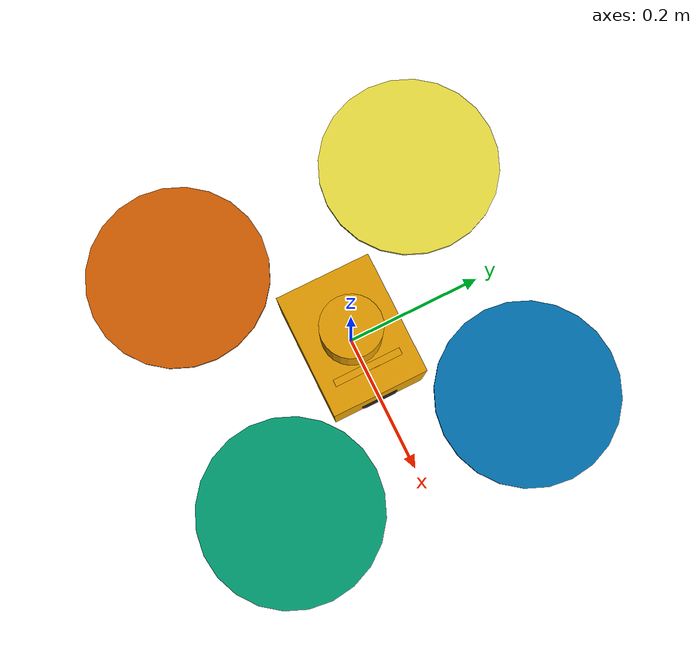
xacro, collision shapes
<?xml version='1.0' encoding='utf-8'?>
<robot name='ctu_cras_norlab_x500_sensor_config_1' xmlns:xacro='http://ros.org/wiki/xacro'>
  <xacro:arg name="name" default="ctu_cras_norlab_x500_sensor_config_1"/>
  <xacro:property name="robot_namespace" value="$(arg name)"/>
  <link name='${robot_namespace}/base_link'>
    <inertial>
      <origin xyz='0 0 0' rpy='0 -0 0'/>
      <mass value='3.3'/>
      <inertia ixx='0.0316667' ixy='0' ixz='0' iyy='0.0316667' iyz='0' izz='0.0625'/>
    </inertial>
    <collision name='base_link_inertia_collision'>
      <origin xyz='0 0 0' rpy='0 -0 0'/>
      <geometry>
        <box size='0.18 0.14 0.12'/>
      </geometry>
    </collision>
    <collision name='base_link_fixed_joint_lump__bottom_light_link_collision_1'>
      <origin xyz='0.03 0 -0.05' rpy='0 -0 0'/>
      <geometry>
        <box size='0.01 0.1 0.003'/>
      </geometry>
    </collision>
    <collision name='base_link_fixed_joint_lump__top_light_link_collision_2'>
      <origin xyz='0.05 0 0.059' rpy='0 -0 0'/>
      <geometry>
        <box size='0.01 0.1 0.003'/>
      </geometry>
    </collision>
    <collision name='base_link_fixed_joint_lump__front_left_leg_clip_link_collision_3'>
      <origin xyz='0.162635 0.162635 -0.0785' rpy='0 -0 0'/>
      <geometry>
        <cylinder radius='0.012' length='0.157'/>
      </geometry>
    </collision>
    <collision name='base_link_fixed_joint_lump__front_left_leg_light_link_collision_4'>
      <origin xyz='0.159099 0.152028 -0.0785' rpy='0 -0 2.35619'/>
      <geometry>
        <box size='0.003 0.01 0.145'/>
      </geometry>
    </collision>
    <collision name='base_link_fixed_joint_lump__front_right_leg_clip_link_collision_5'>
      <origin xyz='0.162635 -0.162635 -0.0785' rpy='0 0 -1.5708'/>
      <geometry>
        <cylinder radius='0.012' length='0.157'/>
      </geometry>
    </collision>
    <collision name='base_link_fixed_joint_lump__front_right_leg_light_link_collision_6'>
      <origin xyz='0.159099 -0.152028 -0.0785' rpy='0 -0 0.785398'/>
      <geometry>
        <box size='0.003 0.01 0.145'/>
      </geometry>
    </collision>
    <collision name='base_link_fixed_joint_lump__os_sensor_link_collision_7'>
      <origin xyz='0 0 0.0944' rpy='0 -0 1.5708'/>
      <geometry>
        <cylinder radius='0.0425' length='0.0735'/>
      </geometry>
    </collision>
    <collision name='base_link_fixed_joint_lump__rear_left_leg_clip_link_collision_8'>
      <origin xyz='-0.162635 0.162635 -0.0785' rpy='0 -0 1.5708'/>
      <geometry>
        <cylinder radius='0.012' length='0.157'/>
      </geometry>
    </collision>
    <collision name='base_link_fixed_joint_lump__rear_right_leg_clip_link_collision_9'>
      <origin xyz='-0.162635 -0.162635 -0.0785' rpy='0 0 -3.14159'/>
      <geometry>
        <cylinder radius='0.012' length='0.157'/>
      </geometry>
    </collision>
    <collision name='base_link_fixed_joint_lump__rs_up_holder_link_collision_10'>
      <origin xyz='0.085 0 0.032' rpy='-1.5708 -0 -1.5708'/>
      <geometry>
        <mesh filename='package://ctu_cras_norlab_x500_sensor_config_1/meshes/holder_rs_up.dae' scale='1 1 1'/>
      </geometry>
    </collision>
    <collision name='base_link_fixed_joint_lump__sensor_holder_link_collision_11'>
      <origin xyz='0 0 -0.022' rpy='1.5708 0 -1.5708'/>
      <geometry>
        <mesh filename='package://ctu_cras_norlab_x500_sensor_config_1/meshes/holder_rs_down_bfox.dae' scale='1 1 1'/>
      </geometry>
    </collision>
    <visual name='base_link_fixed_joint_lump__rs_up_visual_visual'>
      <origin xyz='0.082 0 0.034' rpy='-1.5708 0 1.5708'/>
      <geometry>
        <mesh filename='package://ctu_cras_norlab_x500_sensor_config_1/meshes/realsense.dae' scale='1 1 1'/>
      </geometry>
    </visual>
    <visual name='base_link_fixed_joint_lump__rs_down_visual_visual_1'>
      <origin xyz='0.085 0 -0.02' rpy='1.5708 -0 1.5708'/>
      <geometry>
        <mesh filename='package://ctu_cras_norlab_x500_sensor_config_1/meshes/realsense.dae' scale='1 1 1'/>
      </geometry>
    </visual>
    <visual name='base_link_fixed_joint_lump__camera_front_visual_2'>
      <origin xyz='0.107 0 0' rpy='0 -0 0'/>
      <geometry>
        <mesh filename='package://ctu_cras_norlab_x500_sensor_config_1/meshes/bluefox.dae' scale='1 1 1'/>
      </geometry>
    </visual>
    <visual name='base_link_fixed_joint_lump__back_cover_link_visual_3'>
      <origin xyz='-0.064 0 0.03' rpy='0 -0 1.5708'/>
      <geometry>
        <mesh filename='package://ctu_cras_norlab_x500_sensor_config_1/meshes/side_mrs.dae' scale='1 1 1'/>
      </geometry>
    </visual>
    <visual name='base_link_fixed_joint_lump__back_left_arm_link_visual_4'>
      <origin xyz='0 0 0' rpy='0 -0 2.35619'/>
      <geometry>
        <mesh filename='package://ctu_cras_norlab_x500_sensor_config_1/meshes/holybro_x500_arm.dae' scale='1 1 1'/>
      </geometry>
    </visual>
    <visual name='base_link_fixed_joint_lump__back_left_rotor_link_visual_5'>
      <origin xyz='-0.177484 0.177484 0.021' rpy='0 -0 0'/>
      <geometry>
        <mesh filename='package://ctu_cras_norlab_x500_sensor_config_1/meshes/holybro_x500_motor.dae' scale='1 1 1'/>
      </geometry>
    </visual>
    <visual name='base_link_fixed_joint_lump__back_right_arm_link_visual_6'>
      <origin xyz='0 0 0' rpy='0 0 -2.35619'/>
      <geometry>
        <mesh filename='package://ctu_cras_norlab_x500_sensor_config_1/meshes/holybro_x500_arm.dae' scale='1 1 1'/>
      </geometry>
    </visual>
    <visual name='base_link_fixed_joint_lump__back_right_rotor_link_visual_7'>
      <origin xyz='-0.177484 -0.177484 0.021' rpy='0 -0 0'/>
      <geometry>
        <mesh filename='package://ctu_cras_norlab_x500_sensor_config_1/meshes/holybro_x500_motor.dae' scale='1 1 1'/>
      </geometry>
    </visual>
    <visual name='base_link_fixed_joint_lump__battery_mount_left_link_visual_8'>
      <origin xyz='-0.02 0.03 0' rpy='0 -0 0'/>
      <geometry>
        <mesh filename='package://ctu_cras_norlab_x500_sensor_config_1/meshes/holybro_x500_battery.dae' scale='1 1 1'/>
      </geometry>
    </visual>
    <visual name='base_link_fixed_joint_lump__battery_mount_right_link_visual_9'>
      <origin xyz='-0.02 -0.03 0' rpy='0 -0 0'/>
      <geometry>
        <mesh filename='package://ctu_cras_norlab_x500_sensor_config_1/meshes/holybro_x500_battery.dae' scale='1 1 1'/>
      </geometry>
    </visual>
    <visual name='base_link_fixed_joint_lump__bottom_board_link_visual_10'>
      <origin xyz='0 0 0' rpy='0 -0 0'/>
      <geometry>
        <mesh filename='package://ctu_cras_norlab_x500_sensor_config_1/meshes/holybro_x500_bottom_board.dae' scale='1 1 1'/>
      </geometry>
    </visual>
    <visual name='base_link_fixed_joint_lump__bottom_light_link_visual_11'>
      <origin xyz='0.03 0 -0.05' rpy='0 -0 0'/>
      <geometry>
        <box size='0.01 0.1 0.003'/>
      </geometry>
    </visual>
    <visual name='base_link_fixed_joint_lump__computer_board_link_visual_12'>
      <origin xyz='0 0 0.058' rpy='0 -0 0'/>
      <geometry>
        <box size='0.125 0.125 0.002'/>
      </geometry>
    </visual>
    <visual name='base_link_fixed_joint_lump__top_light_link_visual_13'>
      <origin xyz='0.05 0 0.059' rpy='0 -0 0'/>
      <geometry>
        <box size='0.01 0.1 0.003'/>
      </geometry>
    </visual>
    <visual name='base_link_fixed_joint_lump__front_left_arm_link_visual_14'>
      <origin xyz='0 0 0' rpy='0 -0 0.785398'/>
      <geometry>
        <mesh filename='package://ctu_cras_norlab_x500_sensor_config_1/meshes/holybro_x500_arm.dae' scale='1 1 1'/>
      </geometry>
    </visual>
    <visual name='base_link_fixed_joint_lump__front_left_leg_clip_link_visual_15'>
      <origin xyz='0.162635 0.162635 -0.157' rpy='0 -0 0.785398'/>
      <geometry>
        <mesh filename='package://ctu_cras_norlab_x500_sensor_config_1/meshes/holybro_x500_leg.dae' scale='1 1 1'/>
      </geometry>
    </visual>
    <visual name='base_link_fixed_joint_lump__front_left_leg_light_link_visual_16'>
      <origin xyz='0.159099 0.152028 -0.0785' rpy='0 -0 2.35619'/>
      <geometry>
        <box size='0.003 0.01 0.145'/>
      </geometry>
    </visual>
    <visual name='base_link_fixed_joint_lump__front_left_rotor_link_visual_17'>
      <origin xyz='0.177484 0.177484 0.021' rpy='0 -0 0'/>
      <geometry>
        <mesh filename='package://ctu_cras_norlab_x500_sensor_config_1/meshes/holybro_x500_motor.dae' scale='1 1 1'/>
      </geometry>
    </visual>
    <visual name='base_link_fixed_joint_lump__front_right_arm_link_visual_18'>
      <origin xyz='0 0 0' rpy='0 0 -0.785398'/>
      <geometry>
        <mesh filename='package://ctu_cras_norlab_x500_sensor_config_1/meshes/holybro_x500_arm.dae' scale='1 1 1'/>
      </geometry>
    </visual>
    <visual name='base_link_fixed_joint_lump__front_right_leg_clip_link_visual_19'>
      <origin xyz='0.162635 -0.162635 -0.157' rpy='0 0 -0.785398'/>
      <geometry>
        <mesh filename='package://ctu_cras_norlab_x500_sensor_config_1/meshes/holybro_x500_leg.dae' scale='1 1 1'/>
      </geometry>
    </visual>
    <visual name='base_link_fixed_joint_lump__front_right_leg_light_link_visual_20'>
      <origin xyz='0.159099 -0.152028 -0.0785' rpy='0 -0 0.785398'/>
      <geometry>
        <box size='0.003 0.01 0.145'/>
      </geometry>
    </visual>
    <visual name='base_link_fixed_joint_lump__front_right_rotor_link_visual_21'>
      <origin xyz='0.177484 -0.177484 0.021' rpy='0 -0 0'/>
      <geometry>
        <mesh filename='package://ctu_cras_norlab_x500_sensor_config_1/meshes/holybro_x500_motor.dae' scale='1 1 1'/>
      </geometry>
    </visual>
    <visual name='base_link_fixed_joint_lump__left_cover_link_visual_22'>
      <origin xyz='0 0.064 0.03' rpy='0 0 -3.14159'/>
      <geometry>
        <mesh filename='package://ctu_cras_norlab_x500_sensor_config_1/meshes/side_ctu.dae' scale='1 1 1'/>
      </geometry>
    </visual>
    <visual name='base_link_fixed_joint_lump__os_sensor_link_visual_23'>
      <origin xyz='0 0 0.06' rpy='0 -0 1.5708'/>
      <geometry>
        <mesh filename='package://ctu_cras_norlab_x500_sensor_config_1/meshes/os1_64.dae' scale='1 1 1'/>
      </geometry>
    </visual>
    <visual name='base_link_fixed_joint_lump__os_sensor_window_link_visual_24'>
      <origin xyz='0 0 0.0944' rpy='0 -0 0'/>
      <geometry>
        <cylinder radius='0.038' length='0.035'/>
      </geometry>
    </visual>
    <visual name='base_link_fixed_joint_lump__pc_mount_link_visual_25'>
      <origin xyz='0 0 0' rpy='0 -0 0'/>
      <geometry>
        <mesh filename='package://ctu_cras_norlab_x500_sensor_config_1/meshes/holybro_x500_pc_mount.dae' scale='1 1 1'/>
      </geometry>
    </visual>
    <visual name='base_link_fixed_joint_lump__pixhawk_link_visual_26'>
      <origin xyz='0 0 0.036' rpy='0 -0 0'/>
      <geometry>
        <mesh filename='package://ctu_cras_norlab_x500_sensor_config_1/meshes/pixhawk.dae' scale='1 1 1'/>
      </geometry>
    </visual>
    <visual name='base_link_fixed_joint_lump__rear_left_leg_clip_link_visual_27'>
      <origin xyz='-0.162635 0.162635 -0.157' rpy='0 -0 2.35619'/>
      <geometry>
        <mesh filename='package://ctu_cras_norlab_x500_sensor_config_1/meshes/holybro_x500_leg.dae' scale='1 1 1'/>
      </geometry>
    </visual>
    <visual name='base_link_fixed_joint_lump__rear_right_leg_clip_link_visual_28'>
      <origin xyz='-0.162635 -0.162635 -0.157' rpy='0 0 -2.35619'/>
      <geometry>
        <mesh filename='package://ctu_cras_norlab_x500_sensor_config_1/meshes/holybro_x500_leg.dae' scale='1 1 1'/>
      </geometry>
    </visual>
    <visual name='base_link_fixed_joint_lump__right_cover_link_visual_29'>
      <origin xyz='0 -0.064 0.03' rpy='0 -0 0'/>
      <geometry>
        <mesh filename='package://ctu_cras_norlab_x500_sensor_config_1/meshes/side_ctu.dae' scale='1 1 1'/>
      </geometry>
    </visual>
    <visual name='base_link_fixed_joint_lump__rs_up_holder_link_visual_30'>
      <origin xyz='0.085 0 0.032' rpy='-1.5708 -0 -1.5708'/>
      <geometry>
        <mesh filename='package://ctu_cras_norlab_x500_sensor_config_1/meshes/holder_rs_up.dae' scale='1 1 1'/>
      </geometry>
    </visual>
    <visual name='base_link_fixed_joint_lump__sensor_holder_link_visual_31'>
      <origin xyz='0 0 -0.022' rpy='1.5708 0 -1.5708'/>
      <geometry>
        <mesh filename='package://ctu_cras_norlab_x500_sensor_config_1/meshes/holder_rs_down_bfox.dae' scale='1 1 1'/>
      </geometry>
    </visual>
  </link>
  <sensor name='front_laser' update_rate='20'>
    <parent link='${robot_namespace}/base_link'/>
    <origin xyz='0 0 0.0944' rpy='0 -0 0'/>
  </sensor>
  <sensor name='rs_up' update_rate='30'>
    <parent link='${robot_namespace}/base_link'/>
    <origin xyz='0.82 0 0.034' rpy='0 -1.5708 0'/>
    <camera>
      <image width='1280' height='720' format='R8G8B8' hfov='1.50098' near='0.01' far='300' />
    </camera>
  </sensor>
  <sensor name='rs_down' update_rate='20'>
    <parent link='${robot_namespace}/base_link'/>
    <origin xyz='0.85 0 -0.2' rpy='0 1.5708 0'/>
    <camera>
      <image width='1280' height='720' format='R8G8B8' hfov='1.50098' near='0.01' far='300' />
    </camera>
  </sensor>
  <sensor name='camera_front' update_rate='60'>
    <parent link='${robot_namespace}/base_link'/>
    <origin xyz='0.107 0 0' rpy='0 -0 0'/>
    <camera>
      <image width='1600' height='1200' format='R8G8B8' hfov='1.74533' near='0.01' far='300' />
    </camera>
  </sensor>
  <sensor name='imu_sensor' update_rate='250'>
    <parent link='${robot_namespace}/base_link'/>
    <origin xyz='0 0 0' rpy='0 -0 0'/>
  </sensor>
  <link name='${robot_namespace}/imu_link'>
    <inertial>
      <origin xyz='0 0 0' rpy='0 -0 0'/>
      <mass value='0.015'/>
      <inertia ixx='1e-05' ixy='0' ixz='0' iyy='1e-05' iyz='0' izz='1e-05'/>
    </inertial>
  </link>
  <link name='${robot_namespace}/rotor_0'>
    <inertial>
      <origin xyz='0 0 0' rpy='0 -0 0'/>
      <mass value='0.005'/>
      <inertia ixx='0.0001' ixy='0' ixz='0' iyy='0.0001' iyz='0' izz='0.0001'/>
    </inertial>
    <collision name='rotor_0_collision'>
      <origin xyz='0 0 0' rpy='0 -0 0'/>
      <geometry>
        <cylinder radius='0.127' length='0.005'/>
      </geometry>
    </collision>
    <visual name='rotor_0_visual'>
      <origin xyz='0 0 0' rpy='0 -0 0'/>
      <geometry>
        <mesh filename='package://ctu_cras_norlab_x500_sensor_config_1/meshes/holybro_x500_prop.dae' scale='1 1 1'/>
      </geometry>
    </visual>
  </link>
  <link name='${robot_namespace}/rotor_1'>
    <inertial>
      <origin xyz='0 0 0' rpy='0 -0 0'/>
      <mass value='0.005'/>
      <inertia ixx='0.0001' ixy='0' ixz='0' iyy='0.0001' iyz='0' izz='0.0001'/>
    </inertial>
    <collision name='rotor_1_collision'>
      <origin xyz='0 0 0' rpy='0 -0 0'/>
      <geometry>
        <cylinder radius='0.127' length='0.005'/>
      </geometry>
    </collision>
    <visual name='rotor_1_visual'>
      <origin xyz='0 0 0' rpy='0 -0 0'/>
      <geometry>
        <mesh filename='package://ctu_cras_norlab_x500_sensor_config_1/meshes/holybro_x500_prop.dae' scale='1 1 1'/>
      </geometry>
    </visual>
  </link>
  <link name='${robot_namespace}/rotor_2'>
    <inertial>
      <origin xyz='0 0 0' rpy='0 -0 0'/>
      <mass value='0.005'/>
      <inertia ixx='0.0001' ixy='0' ixz='0' iyy='0.0001' iyz='0' izz='0.0001'/>
    </inertial>
    <collision name='rotor_2_collision'>
      <origin xyz='0 0 0' rpy='0 -0 0'/>
      <geometry>
        <cylinder radius='0.127' length='0.005'/>
      </geometry>
    </collision>
    <visual name='rotor_2_visual'>
      <origin xyz='0 0 0' rpy='0 -0 0'/>
      <geometry>
        <mesh filename='package://ctu_cras_norlab_x500_sensor_config_1/meshes/holybro_x500_prop.dae' scale='-1 1 1'/>
      </geometry>
    </visual>
  </link>
  <link name='${robot_namespace}/rotor_3'>
    <inertial>
      <origin xyz='0 0 0' rpy='0 -0 0'/>
      <mass value='0.005'/>
      <inertia ixx='0.0001' ixy='0' ixz='0' iyy='0.0001' iyz='0' izz='0.0001'/>
    </inertial>
    <collision name='rotor_3_collision'>
      <origin xyz='0 0 0' rpy='0 -0 0'/>
      <geometry>
        <cylinder radius='0.127' length='0.005'/>
      </geometry>
    </collision>
    <visual name='rotor_3_visual'>
      <origin xyz='0 0 0' rpy='0 -0 0'/>
      <geometry>
        <mesh filename='package://ctu_cras_norlab_x500_sensor_config_1/meshes/holybro_x500_prop.dae' scale='-1 1 1'/>
      </geometry>
    </visual>
  </link>
  <joint name='imu_joint' type='fixed'>
    <origin xyz='0 0 0' rpy='0 -0 0'/>
    <parent link='${robot_namespace}/base_link'/>
    <child link='${robot_namespace}/imu_link'/>
    <dynamics damping='0' friction='0' />
    <axis xyz='1 0 0'/>
    <limit lower='0' upper='0' effort='0' velocity='0'/>
  </joint>
  <joint name='rotor_0_joint' type='revolute'>
    <origin xyz='0.177484 -0.177484 0.057' rpy='0 -0 0'/>
    <parent link='${robot_namespace}/base_link'/>
    <child link='${robot_namespace}/rotor_0'/>
    <dynamics damping='0' friction='0' />
    <axis xyz='0 0 1'/>
    <limit lower='-1e+16' upper='1e+16' effort='-1' velocity='-1'/>
  </joint>
  <joint name='rotor_1_joint' type='revolute'>
    <origin xyz='-0.177484 0.177484 0.057' rpy='0 -0 0'/>
    <parent link='${robot_namespace}/base_link'/>
    <child link='${robot_namespace}/rotor_1'/>
    <dynamics damping='0' friction='0' />
    <axis xyz='0 0 1'/>
    <limit lower='-1e+16' upper='1e+16' effort='-1' velocity='-1'/>
  </joint>
  <joint name='rotor_2_joint' type='revolute'>
    <origin xyz='0.177484 0.177484 0.057' rpy='0 -0 0'/>
    <parent link='${robot_namespace}/base_link'/>
    <child link='${robot_namespace}/rotor_2'/>
    <dynamics damping='0' friction='0' />
    <axis xyz='0 0 1'/>
    <limit lower='-1e+16' upper='1e+16' effort='-1' velocity='-1'/>
  </joint>
  <joint name='rotor_3_joint' type='revolute'>
    <origin xyz='-0.177484 -0.177484 0.057' rpy='0 -0 0'/>
    <parent link='${robot_namespace}/base_link'/>
    <child link='${robot_namespace}/rotor_3'/>
    <dynamics damping='0' friction='0' />
    <axis xyz='0 0 1'/>
    <limit lower='-1e+16' upper='1e+16' effort='-1' velocity='-1'/>
  </joint>
</robot>
